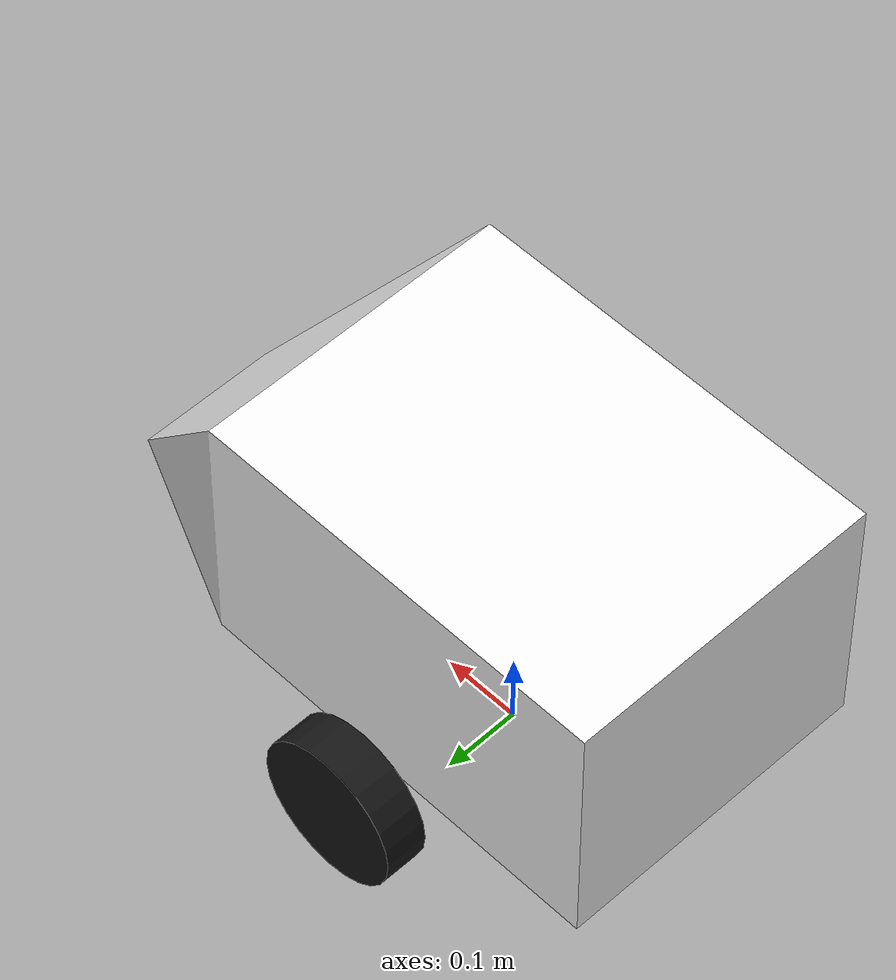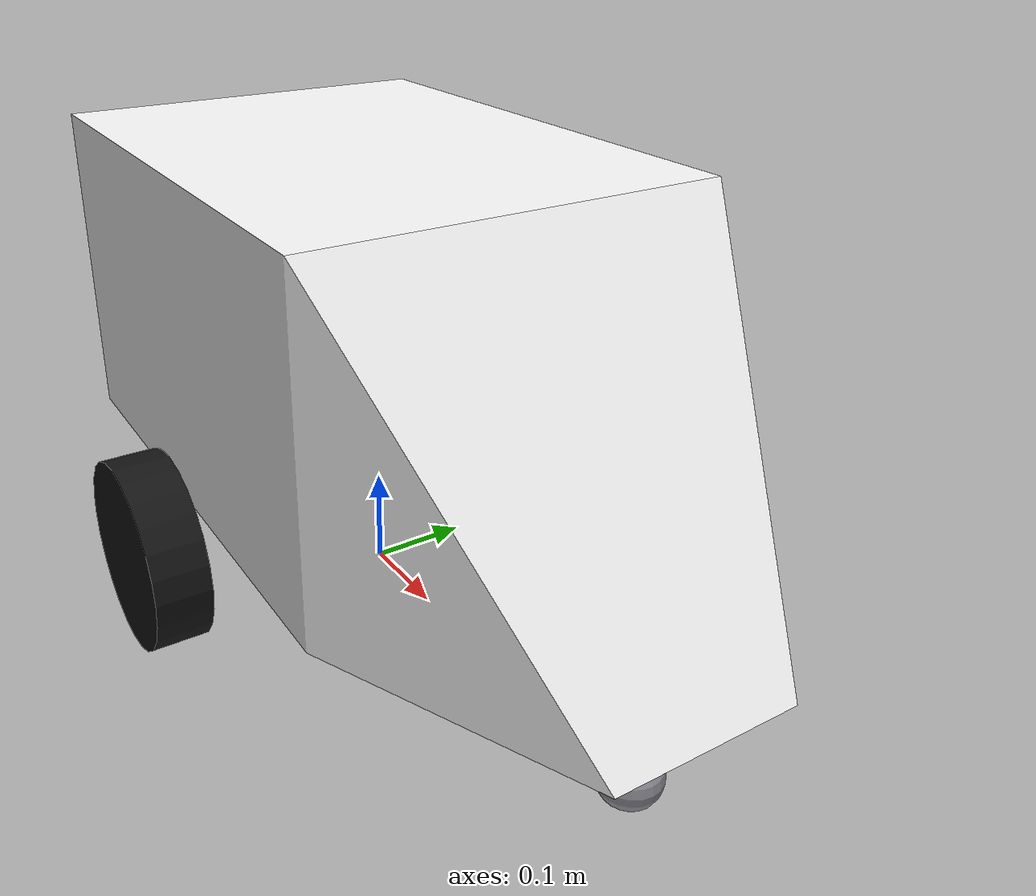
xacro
<?xml version="1.0"?>
<robot name="waiter_robot" xmlns:xacro="http://www.ros.org/wiki/xacro">

  <!-- ===================== Properties ===================== -->
  <xacro:property name="wheel_radius"       value="0.095"/>  <!-- 19 cm diameter -->
  <xacro:property name="wheel_width"        value="0.055"/>
  <xacro:property name="wheel_mass"         value="2.0"/>
  <xacro:property name="track_width"        value="0.51"/>   <!-- center to center of the wheels -->
  <xacro:property name="ground_clearance"   value="0.12"/>   <!-- chassis floor above ground (sits on the hoverboard deck) -->
  <xacro:property name="axle_from_back"     value="0.30"/>   <!-- axle distance from chassis back -->
  <xacro:property name="caster_radius"      value="0.03"/>
  <xacro:property name="caster_mass"        value="0.2"/>
  <xacro:property name="caster_x_from_back" value="0.72"/>
  <xacro:property name="chassis_mass"       value="8.0"/>

  <!-- IMU position relative to base_link (wheel axle center). Measure and change these. -->
  <xacro:property name="imu_x"              value="0.0"/>
  <xacro:property name="imu_y"              value="0.0"/>
  <xacro:property name="imu_z"              value="0.06"/>

  <!-- ===================== Materials ===================== -->
  <material name="white">
    <color rgba="0.95 0.95 0.95 1.0"/>
  </material>
  <material name="black">
    <color rgba="0.08 0.08 0.08 1.0"/>
  </material>
  <material name="grey">
    <color rgba="0.55 0.55 0.58 1.0"/>
  </material>

  <!-- ===================== Macros ===================== -->
  <xacro:macro name="wheel" params="prefix y_pos">
    <joint name="${prefix}_wheel_joint" type="continuous">
      <parent link="base_link"/>
      <child link="${prefix}_wheel_link"/>
      <origin xyz="0 ${y_pos} 0" rpy="0 0 0"/>
      <axis xyz="0 1 0"/>
      <limit effort="10.0" velocity="20.0"/>
      <dynamics damping="0.01" friction="0.01"/>
    </joint>

    <link name="${prefix}_wheel_link">
      <inertial>
        <origin xyz="0 0 0" rpy="0 0 0"/>
        <mass value="${wheel_mass}"/>
        <!-- cylinder with its axis along Y -->
        <inertia ixx="${wheel_mass/12*(3*wheel_radius*wheel_radius + wheel_width*wheel_width)}" ixy="0.0" ixz="0.0"
                 iyy="${wheel_mass*wheel_radius*wheel_radius/2}" iyz="0.0"
                 izz="${wheel_mass/12*(3*wheel_radius*wheel_radius + wheel_width*wheel_width)}"/>
      </inertial>
      <visual>
        <origin xyz="0 0 0" rpy="${pi/2} 0 0"/>
        <geometry><cylinder radius="${wheel_radius}" length="${wheel_width}"/></geometry>
        <material name="black"/>
      </visual>
      <collision>
        <origin xyz="0 0 0" rpy="${pi/2} 0 0"/>
        <geometry><cylinder radius="${wheel_radius}" length="${wheel_width}"/></geometry>
      </collision>
    </link>

    <gazebo reference="${prefix}_wheel_link">
      <mu1>1.0</mu1>
      <mu2>1.0</mu2>
    </gazebo>
  </xacro:macro>

  <!-- ===================== base_footprint and base_link ===================== -->
  <link name="base_footprint"/>

  <joint name="base_footprint_joint" type="fixed">
    <parent link="base_footprint"/>
    <child link="base_link"/>
    <origin xyz="0 0 ${wheel_radius}" rpy="0 0 0"/>
  </joint>

  <link name="base_link"/>

  <!-- ===================== Chassis ===================== -->
  <!-- chassis_link origin = back-bottom-center of the chassis -->
  <joint name="chassis_joint" type="fixed">
    <parent link="base_link"/>
    <child link="chassis_link"/>
    <origin xyz="${-axle_from_back} 0 ${ground_clearance - wheel_radius}" rpy="0 0 0"/>
  </joint>

  <link name="chassis_link">
    <!-- Solid body of uniform density, values computed from the mesh (per 1 kg, scaled by mass) -->
    <inertial>
      <origin xyz="0.32939 0 0.16218" rpy="0 0 0"/>
      <mass value="${chassis_mass}"/>
      <inertia ixx="${chassis_mass*0.022882}" ixy="0.0" ixz="${chassis_mass*0.002627}"
               iyy="${chassis_mass*0.047268}" iyz="0.0"
               izz="${chassis_mass*0.051143}"/>
    </inertial>

    <visual>
      <origin xyz="0 0 0" rpy="0 0 0"/>
      <geometry>
        <mesh filename="package://waiter_description/meshes/chassis.stl"/>
      </geometry>
      <material name="white"/>
    </visual>

    <collision>
      <origin xyz="0 0 0" rpy="0 0 0"/>
      <geometry>
        <mesh filename="package://waiter_description/meshes/chassis.stl"/>
      </geometry>
    </collision>
  </link>

  <!-- ===================== IMU ===================== -->
  <joint name="imu_joint" type="fixed">
    <parent link="base_link"/>
    <child link="imu_link"/>
    <origin xyz="${imu_x} ${imu_y} ${imu_z}" rpy="0 0 0"/>
  </joint>

  <link name="imu_link">
    <visual>
      <origin xyz="0 0 0" rpy="0 0 0"/>
      <geometry><box size="0.03 0.02 0.005"/></geometry>
      <material name="black"/>
    </visual>
  </link>

  <!-- ===================== Wheels ===================== -->
  <xacro:wheel prefix="left"  y_pos="${track_width/2}"/>
  <xacro:wheel prefix="right" y_pos="${-track_width/2}"/>

  <!-- ===================== Front caster (ball) ===================== -->
  <joint name="caster_joint" type="fixed">
    <parent link="base_link"/>
    <child link="caster_link"/>
    <origin xyz="${caster_x_from_back - axle_from_back} 0 ${caster_radius - wheel_radius}" rpy="0 0 0"/>
  </joint>

  <link name="caster_link">
    <inertial>
      <origin xyz="0 0 0" rpy="0 0 0"/>
      <mass value="${caster_mass}"/>
      <inertia ixx="${0.4*caster_mass*caster_radius*caster_radius}" ixy="0.0" ixz="0.0"
               iyy="${0.4*caster_mass*caster_radius*caster_radius}" iyz="0.0"
               izz="${0.4*caster_mass*caster_radius*caster_radius}"/>
    </inertial>
    <visual>
      <origin xyz="0 0 0" rpy="0 0 0"/>
      <geometry><sphere radius="${caster_radius}"/></geometry>
      <material name="grey"/>
    </visual>
    <collision>
      <origin xyz="0 0 0" rpy="0 0 0"/>
      <geometry><sphere radius="${caster_radius}"/></geometry>
    </collision>
    <!-- Post that connects the ball to the chassis floor -->
    <visual>
      <origin xyz="0 0 ${caster_radius + (ground_clearance - 2*caster_radius)/2}" rpy="0 0 0"/>
      <geometry><cylinder radius="0.01" length="${ground_clearance - 2*caster_radius}"/></geometry>
      <material name="grey"/>
    </visual>
    <collision>
      <origin xyz="0 0 ${caster_radius + (ground_clearance - 2*caster_radius)/2}" rpy="0 0 0"/>
      <geometry><cylinder radius="0.01" length="${ground_clearance - 2*caster_radius}"/></geometry>
    </collision>
  </link>

  <gazebo reference="caster_link">
    <mu1>0.0</mu1>
    <mu2>0.0</mu2>
  </gazebo>

  <!-- ===================== ros2_control ===================== -->
  <xacro:include filename="$(find waiter_description)/urdf/waiter_control.xacro"/>

</robot>
